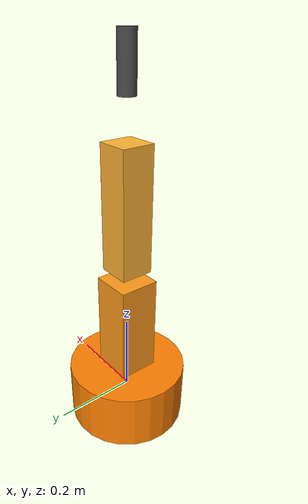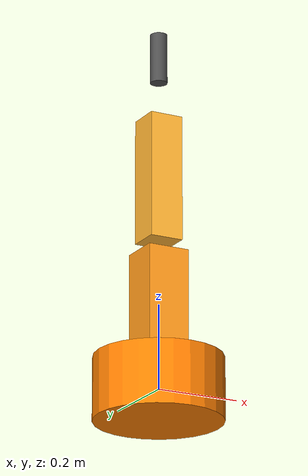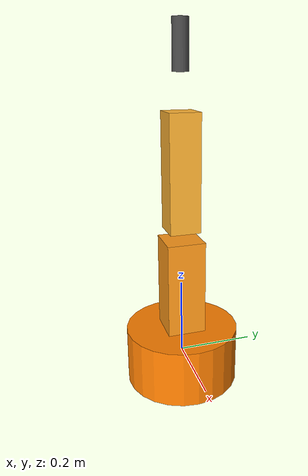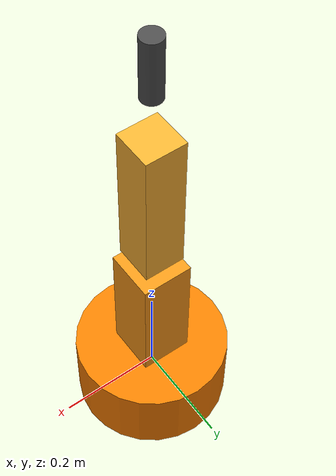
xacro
<?xml version="1.0"?>
<robot name="welder_robot" xmlns:xacro="http://ros.org/wiki/xacro">
  <!-- Base pedestal -->
  <link name="base_link">
    <visual>
      <geometry><cylinder radius="0.15" length="0.15"/></geometry>
      <material name="orange">
        <color rgba="1.0 0.5 0.0 1.0"/>
      </material>
    </visual>
    <collision>
      <geometry><cylinder radius="0.15" length="0.15"/></geometry>
    </collision>
    <inertial>
      <mass value="25.0"/>
      <inertia ixx="0.2" ixy="0.0" ixz="0.0" iyy="0.2" iyz="0.0" izz="0.1"/>
    </inertial>
  </link>

  <!-- Rotating base joint -->
  <joint name="base_rot_joint" type="revolute">
    <parent link="base_link"/>
    <child link="lower_arm"/>
    <origin xyz="0 0 0.15"/>
    <axis xyz="0 0 1"/>
    <limit effort="200" velocity="2.0" lower="-3.14" upper="3.14"/>
  </joint>
  <link name="lower_arm">
    <visual>
      <geometry><box size="0.1 0.1 0.35"/></geometry>
      <material name="orange_arm">
        <color rgba="1.0 0.6 0.1 1.0"/>
      </material>
    </visual>
    <inertial>
      <mass value="8.0"/>
      <inertia ixx="0.05" ixy="0.0" ixz="0.0" iyy="0.05" iyz="0.0" izz="0.02"/>
    </inertial>
  </link>

  <!-- Elbow joint -->
  <joint name="elbow_joint" type="revolute">
    <parent link="lower_arm"/>
    <child link="upper_arm"/>
    <origin xyz="0 0 0.35"/>
    <axis xyz="0 1 0"/>
    <limit effort="150" velocity="1.5" lower="-2.5" upper="2.5"/>
  </joint>
  <link name="upper_arm">
    <visual>
      <geometry><box size="0.08 0.08 0.3"/></geometry>
      <material name="orange_arm_light">
        <color rgba="1.0 0.7 0.2 1.0"/>
      </material>
    </visual>
    <inertial>
      <mass value="5.0"/>
      <inertia ixx="0.03" ixy="0.0" ixz="0.0" iyy="0.03" iyz="0.0" izz="0.01"/>
    </inertial>
  </link>

  <!-- Welding torch -->
  <joint name="torch_joint" type="fixed">
    <parent link="upper_arm"/>
    <child link="torch"/>
    <origin xyz="0 0 0.3"/>
  </joint>
  <link name="torch">
    <visual>
      <geometry><cylinder radius="0.02" length="0.12"/></geometry>
      <material name="dark_grey">
        <color rgba="0.3 0.3 0.3 1.0"/>
      </material>
    </visual>
    <inertial>
      <mass value="0.5"/>
      <inertia ixx="0.001" ixy="0.0" ixz="0.0" iyy="0.001" iyz="0.0" izz="0.001"/>
    </inertial>
  </link>
</robot>
